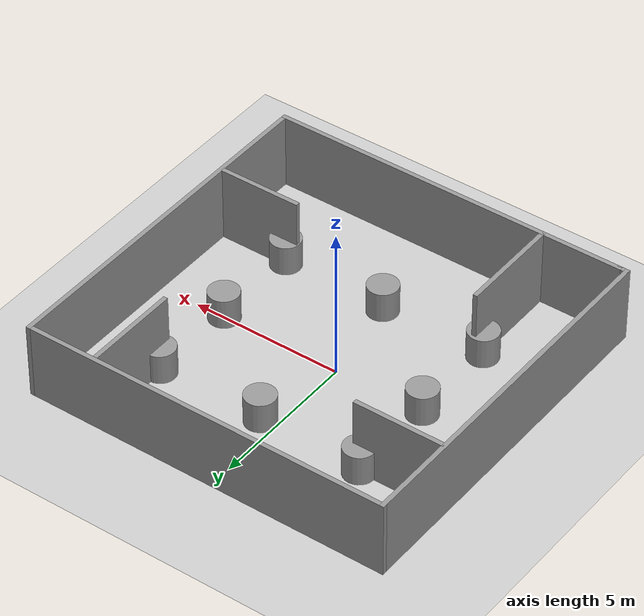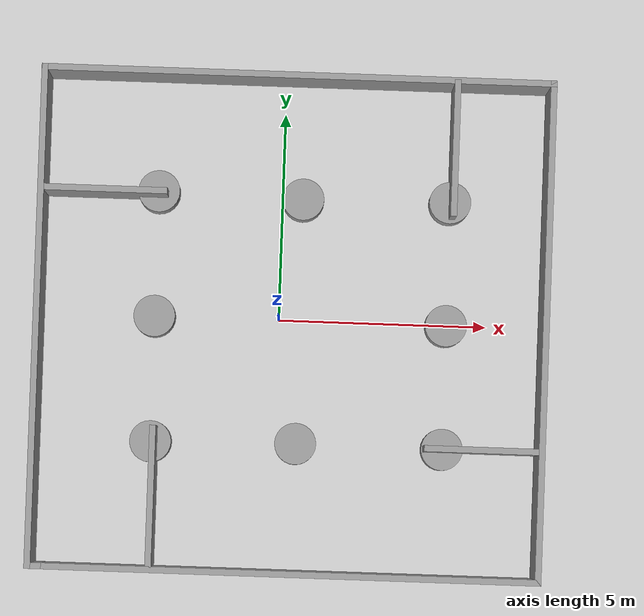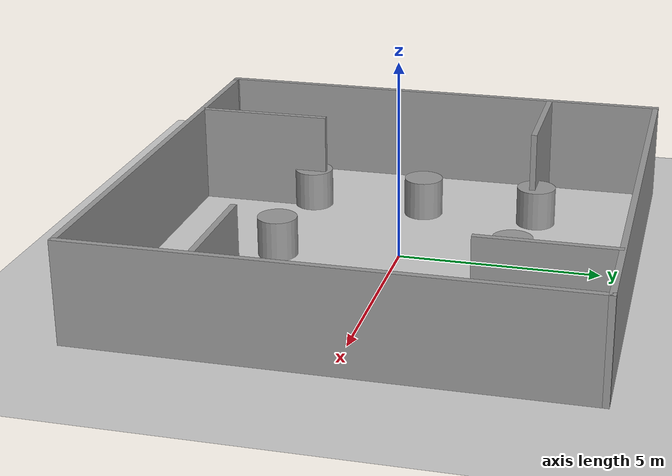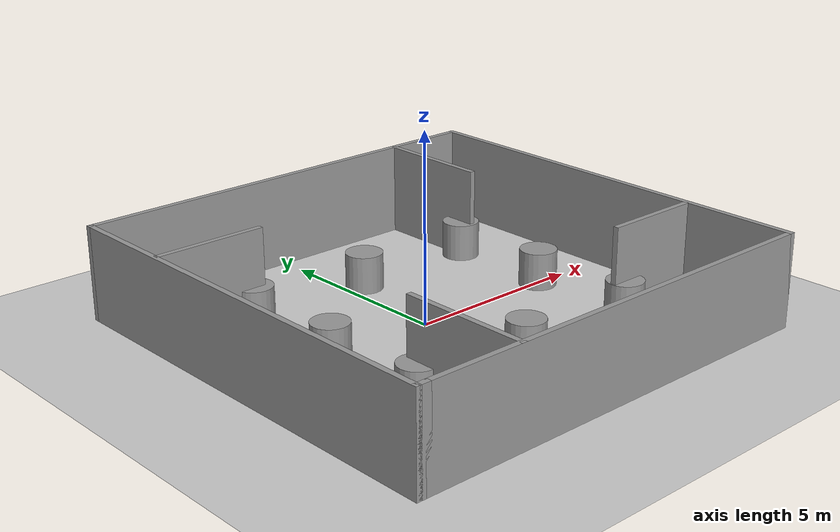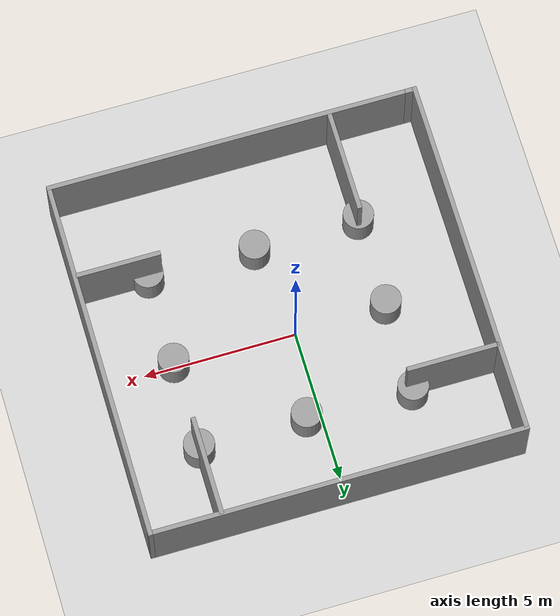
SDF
<sdf version="1.7">
 <world name="default">
  <light name="sun" type="directional">
   <pose>0 0 10 0 -0 0</pose>
   <diffuse>0.8 0.8 0.8 1</diffuse>
   <specular>0.2 0.2 0.2 1</specular>
   <attenuation>
    <range>1000</range>
    <constant>0.9</constant>
    <linear>0.01</linear>
    <quadratic>0.001</quadratic>
   </attenuation>
   <direction>-0.5 0.1 -0.9</direction>
   <spot><inner_angle>0</inner_angle><outer_angle>0</outer_angle><falloff>0</falloff></spot>
  </light>
  <model name="ground_plane">
   <static>1</static>
   <link name="link">
    <collision name="collision">
     <geometry><plane><normal>0 0 1</normal><size>100 100</size></plane></geometry>
     <surface>
      <contact><collide_bitmask>65535</collide_bitmask></contact>
      <friction><ode><mu>100</mu><mu2>50</mu2></ode></friction>
     </surface>
    </collision>
    <visual name="visual">
     <cast_shadows>0</cast_shadows>
     <geometry><plane><normal>0 0 1</normal><size>100 100</size></plane></geometry>
     <material>
      <script><uri>file://media/materials/scripts/gazebo.material</uri><name>Gazebo/Grey</name></script>
     </material>
    </visual>
   </link>
  </model>
  <gravity>0 0 -9.8</gravity>
  <magnetic_field>6e-06 2.3e-05 -4.2e-05</magnetic_field>
  <atmosphere type="adiabatic"/>
  <physics type="ode">
   <max_step_size>0.001</max_step_size>
   <real_time_factor>1</real_time_factor>
   <real_time_update_rate>1000</real_time_update_rate>
  </physics>
  <scene><ambient>0.4 0.4 0.4 1</ambient><background>0.7 0.7 0.7 1</background><shadows>1</shadows></scene>
  <spherical_coordinates>
   <surface_model>EARTH_WGS84</surface_model>
   <latitude_deg>0</latitude_deg>
   <longitude_deg>0</longitude_deg>
   <elevation>0</elevation>
   <heading_deg>0</heading_deg>
  </spherical_coordinates>
  <model name="Untitled">
   <pose>0.29837 -0.160836 0 0 -0 0</pose>
   <link name="Wall_10">
    <collision name="Wall_10_Collision">
     <geometry><box><size>12 0.15 2.5</size></box></geometry>
     <pose>0 0 1.25 0 -0 0</pose>
    </collision>
    <visual name="Wall_10_Visual">
     <pose>0 0 1.25 0 -0 0</pose>
     <geometry><box><size>12 0.15 2.5</size></box></geometry>
     <material>
      <script><uri>file://media/materials/scripts/gazebo.material</uri><name>Gazebo/Grey</name></script>
      <ambient>1 1 1 1</ambient>
     </material>
     <meta><layer>0</layer></meta>
    </visual>
    <pose>-6.05 -0 0 0 -0 -1.5708</pose>
   </link>
   <link name="Wall_11">
    <collision name="Wall_11_Collision">
     <geometry><box><size>0.4 0.15 2.5</size></box></geometry>
     <pose>0 0 1.25 0 -0 0</pose>
    </collision>
    <visual name="Wall_11_Visual">
     <pose>0 0 1.25 0 -0 0</pose>
     <geometry><box><size>0.4 0.15 2.5</size></box></geometry>
     <material>
      <script><uri>file://media/materials/scripts/gazebo.material</uri><name>Gazebo/Grey</name></script>
      <ambient>1 1 1 1</ambient>
     </material>
     <meta><layer>0</layer></meta>
    </visual>
    <pose>-5.925 -5.925 0 0 -0 0</pose>
   </link>
   <link name="Wall_7">
    <collision name="Wall_7_Collision">
     <geometry><box><size>12 0.15 2.5</size></box></geometry>
     <pose>0 0 1.25 0 -0 0</pose>
    </collision>
    <visual name="Wall_7_Visual">
     <pose>0 0 1.25 0 -0 0</pose>
     <geometry><box><size>12 0.15 2.5</size></box></geometry>
     <material>
      <script><uri>file://media/materials/scripts/gazebo.material</uri><name>Gazebo/Grey</name></script>
      <ambient>1 1 1 1</ambient>
     </material>
     <meta><layer>0</layer></meta>
    </visual>
    <pose>0.125 -5.925 0 0 -0 0</pose>
   </link>
   <link name="Wall_8">
    <collision name="Wall_8_Collision">
     <geometry><box><size>12 0.15 2.5</size></box></geometry>
     <pose>0 0 1.25 0 -0 0</pose>
    </collision>
    <visual name="Wall_8_Visual">
     <pose>0 0 1.25 0 -0 0</pose>
     <geometry><box><size>12 0.15 2.5</size></box></geometry>
     <material>
      <script><uri>file://media/materials/scripts/gazebo.material</uri><name>Gazebo/Grey</name></script>
      <ambient>1 1 1 1</ambient>
     </material>
     <meta><layer>0</layer></meta>
    </visual>
    <pose>6.05 -0 0 0 -0 1.5708</pose>
   </link>
   <link name="Wall_9">
    <collision name="Wall_9_Collision">
     <geometry><box><size>12.25 0.15 2.5</size></box></geometry>
     <pose>0 0 1.25 0 -0 0</pose>
    </collision>
    <visual name="Wall_9_Visual">
     <pose>0 0 1.25 0 -0 0</pose>
     <geometry><box><size>12.25 0.15 2.5</size></box></geometry>
     <material>
      <script><uri>file://media/materials/scripts/gazebo.material</uri><name>Gazebo/Grey</name></script>
      <ambient>1 1 1 1</ambient>
     </material>
     <meta><layer>0</layer></meta>
    </visual>
    <pose>-0 5.925 0 0 -0 3.14159</pose>
   </link>
   <static>1</static>
  </model>
  <model name="auto_parking">
   <link name="link_0">
    <inertial>
     <mass>1</mass>
     <inertia><ixx>0.145833</ixx><ixy>0</ixy><ixz>0</ixz><iyy>0.145833</iyy><iyz>0</iyz><izz>0.125</izz></inertia>
    </inertial>
    <pose>-3.4886 3.01134 0 0 -0 0</pose>
    <visual name="visual">
     <geometry><cylinder><radius>0.5</radius><length>1</length></cylinder></geometry>
     <material>
      <lighting>1</lighting>
      <script><uri>file://media/materials/scripts/gazebo.material</uri><name>Gazebo/Grey</name></script>
      <shader type="pixel"/>
     </material>
    </visual>
    <collision name="collision">
     <geometry><cylinder><radius>0.5</radius><length>1</length></cylinder></geometry>
     <surface>
      <friction>
       <ode><mu>1</mu><mu2>1</mu2><fdir1>0 0 0</fdir1><slip1>0</slip1><slip2>0</slip2></ode>
       <torsional>
        <coefficient>1</coefficient>
        <patch_radius>0</patch_radius>
        <surface_radius>0</surface_radius>
        <use_patch_radius>1</use_patch_radius>
        <ode><slip>0</slip></ode>
       </torsional>
      </friction>
      <bounce><restitution_coefficient>0</restitution_coefficient><threshold>1e+06</threshold></bounce>
      <contact>
       <collide_without_contact>0</collide_without_contact>
       <collide_without_contact_bitmask>1</collide_without_contact_bitmask>
       <collide_bitmask>1</collide_bitmask>
       <ode>
        <soft_cfm>0</soft_cfm>
        <soft_erp>0.2</soft_erp>
        <kp>1e+13</kp>
        <kd>1</kd>
        <max_vel>0.01</max_vel>
        <min_depth>0</min_depth>
       </ode>
       <bullet>
        <split_impulse>1</split_impulse>
        <split_impulse_penetration_threshold>-0.01</split_impulse_penetration_threshold>
        <soft_cfm>0</soft_cfm>
        <soft_erp>0.2</soft_erp>
        <kp>1e+13</kp>
        <kd>1</kd>
       </bullet>
      </contact>
     </surface>
    </collision>
   </link>
   <link name="link_2">
    <inertial>
     <mass>1</mass>
     <inertia><ixx>0.145833</ixx><ixy>0</ixy><ixz>0</ixz><iyy>0.145833</iyy><iyz>0</iyz><izz>0.125</izz></inertia>
    </inertial>
    <pose>-0.018151 2.92938 0 0 -0 0</pose>
    <visual name="visual">
     <geometry><cylinder><radius>0.5</radius><length>1</length></cylinder></geometry>
     <material>
      <lighting>1</lighting>
      <script><uri>file://media/materials/scripts/gazebo.material</uri><name>Gazebo/Grey</name></script>
      <shader type="pixel"/>
     </material>
    </visual>
    <collision name="collision">
     <geometry><cylinder><radius>0.5</radius><length>1</length></cylinder></geometry>
     <surface>
      <friction>
       <ode><mu>1</mu><mu2>1</mu2><fdir1>0 0 0</fdir1><slip1>0</slip1><slip2>0</slip2></ode>
       <torsional>
        <coefficient>1</coefficient>
        <patch_radius>0</patch_radius>
        <surface_radius>0</surface_radius>
        <use_patch_radius>1</use_patch_radius>
        <ode><slip>0</slip></ode>
       </torsional>
      </friction>
      <bounce><restitution_coefficient>0</restitution_coefficient><threshold>1e+06</threshold></bounce>
      <contact>
       <collide_without_contact>0</collide_without_contact>
       <collide_without_contact_bitmask>1</collide_without_contact_bitmask>
       <collide_bitmask>1</collide_bitmask>
       <ode>
        <soft_cfm>0</soft_cfm>
        <soft_erp>0.2</soft_erp>
        <kp>1e+13</kp>
        <kd>1</kd>
        <max_vel>0.01</max_vel>
        <min_depth>0</min_depth>
       </ode>
       <bullet>
        <split_impulse>1</split_impulse>
        <split_impulse_penetration_threshold>-0.01</split_impulse_penetration_threshold>
        <soft_cfm>0</soft_cfm>
        <soft_erp>0.2</soft_erp>
        <kp>1e+13</kp>
        <kd>1</kd>
       </bullet>
      </contact>
     </surface>
    </collision>
   </link>
   <link name="link_3">
    <inertial>
     <mass>1</mass>
     <inertia><ixx>0.145833</ixx><ixy>0</ixy><ixz>0</ixz><iyy>0.145833</iyy><iyz>0</iyz><izz>0.125</izz></inertia>
    </inertial>
    <pose>3.50971 2.96682 0 0 -0 0</pose>
    <visual name="visual">
     <geometry><cylinder><radius>0.5</radius><length>1</length></cylinder></geometry>
     <material>
      <lighting>1</lighting>
      <script><uri>file://media/materials/scripts/gazebo.material</uri><name>Gazebo/Grey</name></script>
      <shader type="pixel"/>
     </material>
    </visual>
    <collision name="collision">
     <geometry><cylinder><radius>0.5</radius><length>1</length></cylinder></geometry>
     <surface>
      <friction>
       <ode><mu>1</mu><mu2>1</mu2><fdir1>0 0 0</fdir1><slip1>0</slip1><slip2>0</slip2></ode>
       <torsional>
        <coefficient>1</coefficient>
        <patch_radius>0</patch_radius>
        <surface_radius>0</surface_radius>
        <use_patch_radius>1</use_patch_radius>
        <ode><slip>0</slip></ode>
       </torsional>
      </friction>
      <bounce><restitution_coefficient>0</restitution_coefficient><threshold>1e+06</threshold></bounce>
      <contact>
       <collide_without_contact>0</collide_without_contact>
       <collide_without_contact_bitmask>1</collide_without_contact_bitmask>
       <collide_bitmask>1</collide_bitmask>
       <ode>
        <soft_cfm>0</soft_cfm>
        <soft_erp>0.2</soft_erp>
        <kp>1e+13</kp>
        <kd>1</kd>
        <max_vel>0.01</max_vel>
        <min_depth>0</min_depth>
       </ode>
       <bullet>
        <split_impulse>1</split_impulse>
        <split_impulse_penetration_threshold>-0.01</split_impulse_penetration_threshold>
        <soft_cfm>0</soft_cfm>
        <soft_erp>0.2</soft_erp>
        <kp>1e+13</kp>
        <kd>1</kd>
       </bullet>
      </contact>
     </surface>
    </collision>
   </link>
   <link name="link_4">
    <inertial>
     <mass>1</mass>
     <inertia><ixx>0.145833</ixx><ixy>0</ixy><ixz>0</ixz><iyy>0.145833</iyy><iyz>0</iyz><izz>0.125</izz></inertia>
    </inertial>
    <pose>3.50631 0.005841 0 0 -0 0</pose>
    <visual name="visual">
     <geometry><cylinder><radius>0.5</radius><length>1</length></cylinder></geometry>
     <material>
      <lighting>1</lighting>
      <script><uri>file://media/materials/scripts/gazebo.material</uri><name>Gazebo/Grey</name></script>
      <shader type="pixel"/>
     </material>
    </visual>
    <collision name="collision">
     <geometry><cylinder><radius>0.5</radius><length>1</length></cylinder></geometry>
     <surface>
      <friction>
       <ode><mu>1</mu><mu2>1</mu2><fdir1>0 0 0</fdir1><slip1>0</slip1><slip2>0</slip2></ode>
       <torsional>
        <coefficient>1</coefficient>
        <patch_radius>0</patch_radius>
        <surface_radius>0</surface_radius>
        <use_patch_radius>1</use_patch_radius>
        <ode><slip>0</slip></ode>
       </torsional>
      </friction>
      <bounce><restitution_coefficient>0</restitution_coefficient><threshold>1e+06</threshold></bounce>
      <contact>
       <collide_without_contact>0</collide_without_contact>
       <collide_without_contact_bitmask>1</collide_without_contact_bitmask>
       <collide_bitmask>1</collide_bitmask>
       <ode>
        <soft_cfm>0</soft_cfm>
        <soft_erp>0.2</soft_erp>
        <kp>1e+13</kp>
        <kd>1</kd>
        <max_vel>0.01</max_vel>
        <min_depth>0</min_depth>
       </ode>
       <bullet>
        <split_impulse>1</split_impulse>
        <split_impulse_penetration_threshold>-0.01</split_impulse_penetration_threshold>
        <soft_cfm>0</soft_cfm>
        <soft_erp>0.2</soft_erp>
        <kp>1e+13</kp>
        <kd>1</kd>
       </bullet>
      </contact>
     </surface>
    </collision>
   </link>
   <link name="link_5">
    <inertial>
     <mass>1</mass>
     <inertia><ixx>0.145833</ixx><ixy>0</ixy><ixz>0</ixz><iyy>0.145833</iyy><iyz>0</iyz><izz>0.125</izz></inertia>
    </inertial>
    <pose>3.50321 -2.96981 0 0 -0 0</pose>
    <visual name="visual">
     <geometry><cylinder><radius>0.5</radius><length>1</length></cylinder></geometry>
     <material>
      <lighting>1</lighting>
      <script><uri>file://media/materials/scripts/gazebo.material</uri><name>Gazebo/Grey</name></script>
      <shader type="pixel"/>
     </material>
    </visual>
    <collision name="collision">
     <geometry><cylinder><radius>0.5</radius><length>1</length></cylinder></geometry>
     <surface>
      <friction>
       <ode><mu>1</mu><mu2>1</mu2><fdir1>0 0 0</fdir1><slip1>0</slip1><slip2>0</slip2></ode>
       <torsional>
        <coefficient>1</coefficient>
        <patch_radius>0</patch_radius>
        <surface_radius>0</surface_radius>
        <use_patch_radius>1</use_patch_radius>
        <ode><slip>0</slip></ode>
       </torsional>
      </friction>
      <bounce><restitution_coefficient>0</restitution_coefficient><threshold>1e+06</threshold></bounce>
      <contact>
       <collide_without_contact>0</collide_without_contact>
       <collide_without_contact_bitmask>1</collide_without_contact_bitmask>
       <collide_bitmask>1</collide_bitmask>
       <ode>
        <soft_cfm>0</soft_cfm>
        <soft_erp>0.2</soft_erp>
        <kp>1e+13</kp>
        <kd>1</kd>
        <max_vel>0.01</max_vel>
        <min_depth>0</min_depth>
       </ode>
       <bullet>
        <split_impulse>1</split_impulse>
        <split_impulse_penetration_threshold>-0.01</split_impulse_penetration_threshold>
        <soft_cfm>0</soft_cfm>
        <soft_erp>0.2</soft_erp>
        <kp>1e+13</kp>
        <kd>1</kd>
       </bullet>
      </contact>
     </surface>
    </collision>
   </link>
   <link name="link_6">
    <inertial>
     <mass>1</mass>
     <inertia><ixx>0.145833</ixx><ixy>0</ixy><ixz>0</ixz><iyy>0.145833</iyy><iyz>0</iyz><izz>0.125</izz></inertia>
    </inertial>
    <pose>-0.015713 -2.9486 0 0 -0 0</pose>
    <visual name="visual">
     <geometry><cylinder><radius>0.5</radius><length>1</length></cylinder></geometry>
     <material>
      <lighting>1</lighting>
      <script><uri>file://media/materials/scripts/gazebo.material</uri><name>Gazebo/Grey</name></script>
      <shader type="pixel"/>
     </material>
    </visual>
    <collision name="collision">
     <geometry><cylinder><radius>0.5</radius><length>1</length></cylinder></geometry>
     <surface>
      <friction>
       <ode><mu>1</mu><mu2>1</mu2><fdir1>0 0 0</fdir1><slip1>0</slip1><slip2>0</slip2></ode>
       <torsional>
        <coefficient>1</coefficient>
        <patch_radius>0</patch_radius>
        <surface_radius>0</surface_radius>
        <use_patch_radius>1</use_patch_radius>
        <ode><slip>0</slip></ode>
       </torsional>
      </friction>
      <bounce><restitution_coefficient>0</restitution_coefficient><threshold>1e+06</threshold></bounce>
      <contact>
       <collide_without_contact>0</collide_without_contact>
       <collide_without_contact_bitmask>1</collide_without_contact_bitmask>
       <collide_bitmask>1</collide_bitmask>
       <ode>
        <soft_cfm>0</soft_cfm>
        <soft_erp>0.2</soft_erp>
        <kp>1e+13</kp>
        <kd>1</kd>
        <max_vel>0.01</max_vel>
        <min_depth>0</min_depth>
       </ode>
       <bullet>
        <split_impulse>1</split_impulse>
        <split_impulse_penetration_threshold>-0.01</split_impulse_penetration_threshold>
        <soft_cfm>0</soft_cfm>
        <soft_erp>0.2</soft_erp>
        <kp>1e+13</kp>
        <kd>1</kd>
       </bullet>
      </contact>
     </surface>
    </collision>
   </link>
   <link name="link_7">
    <inertial>
     <mass>1</mass>
     <inertia><ixx>0.145833</ixx><ixy>0</ixy><ixz>0</ixz><iyy>0.145833</iyy><iyz>0</iyz><izz>0.125</izz></inertia>
    </inertial>
    <pose>-3.49491 -3.00507 0 0 -0 0</pose>
    <visual name="visual">
     <geometry><cylinder><radius>0.5</radius><length>1</length></cylinder></geometry>
     <material>
      <lighting>1</lighting>
      <script><uri>file://media/materials/scripts/gazebo.material</uri><name>Gazebo/Grey</name></script>
      <shader type="pixel"/>
     </material>
    </visual>
    <collision name="collision">
     <geometry><cylinder><radius>0.5</radius><length>1</length></cylinder></geometry>
     <surface>
      <friction>
       <ode><mu>1</mu><mu2>1</mu2><fdir1>0 0 0</fdir1><slip1>0</slip1><slip2>0</slip2></ode>
       <torsional>
        <coefficient>1</coefficient>
        <patch_radius>0</patch_radius>
        <surface_radius>0</surface_radius>
        <use_patch_radius>1</use_patch_radius>
        <ode><slip>0</slip></ode>
       </torsional>
      </friction>
      <bounce><restitution_coefficient>0</restitution_coefficient><threshold>1e+06</threshold></bounce>
      <contact>
       <collide_without_contact>0</collide_without_contact>
       <collide_without_contact_bitmask>1</collide_without_contact_bitmask>
       <collide_bitmask>1</collide_bitmask>
       <ode>
        <soft_cfm>0</soft_cfm>
        <soft_erp>0.2</soft_erp>
        <kp>1e+13</kp>
        <kd>1</kd>
        <max_vel>0.01</max_vel>
        <min_depth>0</min_depth>
       </ode>
       <bullet>
        <split_impulse>1</split_impulse>
        <split_impulse_penetration_threshold>-0.01</split_impulse_penetration_threshold>
        <soft_cfm>0</soft_cfm>
        <soft_erp>0.2</soft_erp>
        <kp>1e+13</kp>
        <kd>1</kd>
       </bullet>
      </contact>
     </surface>
    </collision>
   </link>
   <link name="link_8">
    <inertial>
     <mass>1</mass>
     <inertia><ixx>0.145833</ixx><ixy>0</ixy><ixz>0</ixz><iyy>0.145833</iyy><iyz>0</iyz><izz>0.125</izz></inertia>
    </inertial>
    <pose>-3.50186 0.010094 0 0 -0 0</pose>
    <visual name="visual">
     <geometry><cylinder><radius>0.5</radius><length>1</length></cylinder></geometry>
     <material>
      <lighting>1</lighting>
      <script><uri>file://media/materials/scripts/gazebo.material</uri><name>Gazebo/Grey</name></script>
      <shader type="pixel"/>
     </material>
    </visual>
    <collision name="collision">
     <geometry><cylinder><radius>0.5</radius><length>1</length></cylinder></geometry>
     <surface>
      <friction>
       <ode><mu>1</mu><mu2>1</mu2><fdir1>0 0 0</fdir1><slip1>0</slip1><slip2>0</slip2></ode>
       <torsional>
        <coefficient>1</coefficient>
        <patch_radius>0</patch_radius>
        <surface_radius>0</surface_radius>
        <use_patch_radius>1</use_patch_radius>
        <ode><slip>0</slip></ode>
       </torsional>
      </friction>
      <bounce><restitution_coefficient>0</restitution_coefficient><threshold>1e+06</threshold></bounce>
      <contact>
       <collide_without_contact>0</collide_without_contact>
       <collide_without_contact_bitmask>1</collide_without_contact_bitmask>
       <collide_bitmask>1</collide_bitmask>
       <ode>
        <soft_cfm>0</soft_cfm>
        <soft_erp>0.2</soft_erp>
        <kp>1e+13</kp>
        <kd>1</kd>
        <max_vel>0.01</max_vel>
        <min_depth>0</min_depth>
       </ode>
       <bullet>
        <split_impulse>1</split_impulse>
        <split_impulse_penetration_threshold>-0.01</split_impulse_penetration_threshold>
        <soft_cfm>0</soft_cfm>
        <soft_erp>0.2</soft_erp>
        <kp>1e+13</kp>
        <kd>1</kd>
       </bullet>
      </contact>
     </surface>
    </collision>
   </link>
   <static>0</static>
   <pose>0.510498 -0.025498 0.500008 -2e-06 -2e-06 0</pose>
  </model>
  <model name="auto_parking_0">
   <pose>0.28049 -0.18355 0 0 -0 0</pose>
   <link name="Wall_11">
    <collision name="Wall_11_Collision">
     <geometry><box><size>3.25 0.15 2.5</size></box></geometry>
     <pose>0 0 1.25 0 -0 0</pose>
    </collision>
    <visual name="Wall_11_Visual">
     <pose>0 0 1.25 0 -0 0</pose>
     <geometry><box><size>3.25 0.15 2.5</size></box></geometry>
     <material>
      <script><uri>file://media/materials/scripts/gazebo.material</uri><name>Gazebo/Grey</name></script>
      <ambient>1 1 1 1</ambient>
     </material>
     <meta><layer>0</layer></meta>
    </visual>
    <pose>3.7875 4.34983 0 0 -0 1.5708</pose>
   </link>
   <link name="Wall_4">
    <collision name="Wall_4_Collision">
     <geometry><box><size>2.75 0.15 2.5</size></box></geometry>
     <pose>0 0 1.25 0 -0 0</pose>
    </collision>
    <visual name="Wall_4_Visual">
     <pose>0 0 1.25 0 -0 0</pose>
     <geometry><box><size>2.75 0.15 2.5</size></box></geometry>
     <material>
      <script><uri>file://media/materials/scripts/gazebo.material</uri><name>Gazebo/Grey</name></script>
      <ambient>1 1 1 1</ambient>
     </material>
     <meta><layer>0</layer></meta>
    </visual>
    <pose>4.64951 -2.80645 0 0 -0 0</pose>
   </link>
   <link name="Wall_7">
    <collision name="Wall_7_Collision">
     <geometry><box><size>3.5 0.15 2.5</size></box></geometry>
     <pose>0 0 1.25 0 -0 0</pose>
    </collision>
    <visual name="Wall_7_Visual">
     <pose>0 0 1.25 0 -0 0</pose>
     <geometry><box><size>3.5 0.15 2.5</size></box></geometry>
     <material>
      <script><uri>file://media/materials/scripts/gazebo.material</uri><name>Gazebo/Grey</name></script>
      <ambient>1 1 1 1</ambient>
     </material>
     <meta><layer>0</layer></meta>
    </visual>
    <pose>-3.17391 -4.22483 0 0 -0 1.5708</pose>
   </link>
   <link name="Wall_9">
    <collision name="Wall_9_Collision">
     <geometry><box><size>3 0.15 2.5</size></box></geometry>
     <pose>0 0 1.25 0 -0 0</pose>
    </collision>
    <visual name="Wall_9_Visual">
     <pose>0 0 1.25 0 -0 0</pose>
     <geometry><box><size>3 0.15 2.5</size></box></geometry>
     <material>
      <script><uri>file://media/materials/scripts/gazebo.material</uri><name>Gazebo/Grey</name></script>
      <ambient>1 1 1 1</ambient>
     </material>
     <meta><layer>0</layer></meta>
    </visual>
    <pose>-4.52451 3.09104 0 0 -0 3.14159</pose>
   </link>
   <static>1</static>
  </model>
 </world>
</sdf>
